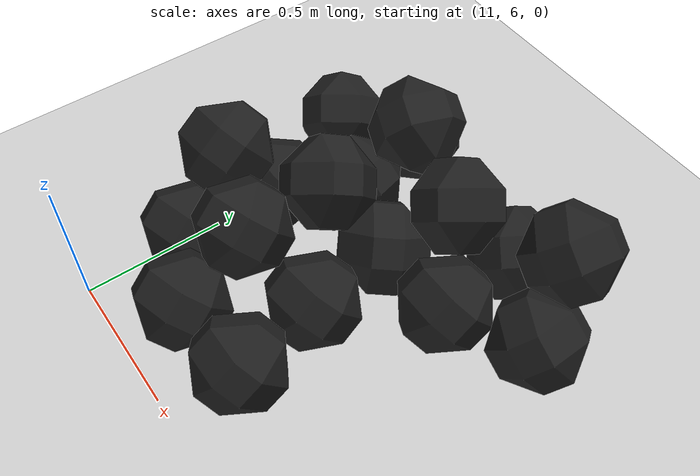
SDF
<sdf version="1.7">
 <world name="default">
  <model name="ground_plane">
   <static>1</static>
   <link name="link">
    <collision name="collision">
     <geometry><plane><normal>0 0 1</normal><size>100 100</size></plane></geometry>
     <surface><friction><ode><mu>100</mu><mu2>50</mu2></ode></friction></surface>
    </collision>
    <visual name="visual">
     <cast_shadows>0</cast_shadows>
     <geometry><plane><normal>0 0 1</normal><size>100 100</size></plane></geometry>
     <material>
      <script><uri>file://media/materials/scripts/gazebo.material</uri><name>Gazebo/Grey</name></script>
     </material>
    </visual>
   </link>
  </model>
  <model name="haoduomiantiaa_4">
   <link name="link_0">
    <inertial>
     <mass>0.2</mass>
     <inertia>
      <ixx>0.166667</ixx>
      <ixy>0</ixy>
      <ixz>0</ixz>
      <iyy>0.166667</iyy>
      <iyz>0</iyz>
      <izz>0.166667</izz>
     </inertia>
    </inertial>
    <visual name="visual">
     <geometry>
      <mesh>
       <uri>/home/lihaoyang/catkin_ws/src/pudong_gazebo/world/stl/haoduomianti.stl</uri>
       <scale>1 1 1</scale>
      </mesh>
     </geometry>
     <material>
      <lighting>1</lighting>
      <script><uri>file://media/materials/scripts/gazebo.material</uri><name>Gazebo/Black</name></script>
      <shader type="pixel"><normal_map>__default__</normal_map></shader>
      <ambient>0.3 0.3 0.3 1</ambient>
      <diffuse>0.7 0.7 0.7 1</diffuse>
      <specular>0.01 0.01 0.01 1</specular>
      <emissive>0 0 0 1</emissive>
     </material>
    </visual>
    <collision name="collision">
     <geometry>
      <mesh>
       <uri>/home/lihaoyang/catkin_ws/src/pudong_gazebo/world/stl/haoduomianti.stl</uri>
       <scale>1 1 1</scale>
      </mesh>
     </geometry>
     <surface>
      <friction>
       <ode><mu>1</mu><mu2>1</mu2><fdir1>0 0 0</fdir1><slip1>0</slip1><slip2>0</slip2></ode>
       <torsional>
        <coefficient>1</coefficient>
        <patch_radius>0</patch_radius>
        <surface_radius>0</surface_radius>
        <use_patch_radius>1</use_patch_radius>
        <ode><slip>0</slip></ode>
       </torsional>
      </friction>
      <bounce><restitution_coefficient>0</restitution_coefficient><threshold>1e+06</threshold></bounce>
      <contact>
       <collide_without_contact>0</collide_without_contact>
       <collide_without_contact_bitmask>1</collide_without_contact_bitmask>
       <collide_bitmask>1</collide_bitmask>
       <ode>
        <soft_cfm>0</soft_cfm>
        <soft_erp>0.2</soft_erp>
        <kp>1e+13</kp>
        <kd>1</kd>
        <max_vel>0.01</max_vel>
        <min_depth>0</min_depth>
       </ode>
       <bullet>
        <split_impulse>1</split_impulse>
        <split_impulse_penetration_threshold>-0.01</split_impulse_penetration_threshold>
        <soft_cfm>0</soft_cfm>
        <soft_erp>0.2</soft_erp>
        <kp>1e+13</kp>
        <kd>1</kd>
       </bullet>
      </contact>
     </surface>
    </collision>
   </link>
   <static>0</static>
   <pose>11.7712 7.19134 -0.115666 0.785393 -0.615464 0.502665</pose>
  </model>
  <model name="haoduomiantiaa_5">
   <link name="link_0">
    <inertial>
     <mass>0.2</mass>
     <inertia>
      <ixx>0.166667</ixx>
      <ixy>0</ixy>
      <ixz>0</ixz>
      <iyy>0.166667</iyy>
      <iyz>0</iyz>
      <izz>0.166667</izz>
     </inertia>
    </inertial>
    <visual name="visual">
     <geometry>
      <mesh>
       <uri>/home/lihaoyang/catkin_ws/src/pudong_gazebo/world/stl/haoduomianti.stl</uri>
       <scale>1 1 1</scale>
      </mesh>
     </geometry>
     <material>
      <lighting>1</lighting>
      <script><uri>file://media/materials/scripts/gazebo.material</uri><name>Gazebo/Black</name></script>
      <shader type="pixel"><normal_map>__default__</normal_map></shader>
      <ambient>0.3 0.3 0.3 1</ambient>
      <diffuse>0.7 0.7 0.7 1</diffuse>
      <specular>0.01 0.01 0.01 1</specular>
      <emissive>0 0 0 1</emissive>
     </material>
    </visual>
    <collision name="collision">
     <geometry>
      <mesh>
       <uri>/home/lihaoyang/catkin_ws/src/pudong_gazebo/world/stl/haoduomianti.stl</uri>
       <scale>1 1 1</scale>
      </mesh>
     </geometry>
     <surface>
      <friction>
       <ode><mu>1</mu><mu2>1</mu2><fdir1>0 0 0</fdir1><slip1>0</slip1><slip2>0</slip2></ode>
       <torsional>
        <coefficient>1</coefficient>
        <patch_radius>0</patch_radius>
        <surface_radius>0</surface_radius>
        <use_patch_radius>1</use_patch_radius>
        <ode><slip>0</slip></ode>
       </torsional>
      </friction>
      <bounce><restitution_coefficient>0</restitution_coefficient><threshold>1e+06</threshold></bounce>
      <contact>
       <collide_without_contact>0</collide_without_contact>
       <collide_without_contact_bitmask>1</collide_without_contact_bitmask>
       <collide_bitmask>1</collide_bitmask>
       <ode>
        <soft_cfm>0</soft_cfm>
        <soft_erp>0.2</soft_erp>
        <kp>1e+13</kp>
        <kd>1</kd>
        <max_vel>0.01</max_vel>
        <min_depth>0</min_depth>
       </ode>
       <bullet>
        <split_impulse>1</split_impulse>
        <split_impulse_penetration_threshold>-0.01</split_impulse_penetration_threshold>
        <soft_cfm>0</soft_cfm>
        <soft_erp>0.2</soft_erp>
        <kp>1e+13</kp>
        <kd>1</kd>
       </bullet>
      </contact>
     </surface>
    </collision>
   </link>
   <static>0</static>
   <pose>11.7983 6.88109 -0.115471 0.785183 -0.61558 -2.61596</pose>
  </model>
  <model name="haoduomiantiaa_10">
   <link name="link_0">
    <inertial>
     <mass>0.2</mass>
     <inertia>
      <ixx>0.166667</ixx>
      <ixy>0</ixy>
      <ixz>0</ixz>
      <iyy>0.166667</iyy>
      <iyz>0</iyz>
      <izz>0.166667</izz>
     </inertia>
    </inertial>
    <visual name="visual">
     <geometry>
      <mesh>
       <uri>/home/lihaoyang/catkin_ws/src/pudong_gazebo/world/stl/haoduomianti.stl</uri>
       <scale>1 1 1</scale>
      </mesh>
     </geometry>
     <material>
      <lighting>1</lighting>
      <script><uri>file://media/materials/scripts/gazebo.material</uri><name>Gazebo/Black</name></script>
      <shader type="pixel"><normal_map>__default__</normal_map></shader>
      <ambient>0.3 0.3 0.3 1</ambient>
      <diffuse>0.7 0.7 0.7 1</diffuse>
      <specular>0.01 0.01 0.01 1</specular>
      <emissive>0 0 0 1</emissive>
     </material>
    </visual>
    <collision name="collision">
     <geometry>
      <mesh>
       <uri>/home/lihaoyang/catkin_ws/src/pudong_gazebo/world/stl/haoduomianti.stl</uri>
       <scale>1 1 1</scale>
      </mesh>
     </geometry>
     <surface>
      <friction>
       <ode><mu>1</mu><mu2>1</mu2><fdir1>0 0 0</fdir1><slip1>0</slip1><slip2>0</slip2></ode>
       <torsional>
        <coefficient>1</coefficient>
        <patch_radius>0</patch_radius>
        <surface_radius>0</surface_radius>
        <use_patch_radius>1</use_patch_radius>
        <ode><slip>0</slip></ode>
       </torsional>
      </friction>
      <bounce><restitution_coefficient>0</restitution_coefficient><threshold>1e+06</threshold></bounce>
      <contact>
       <collide_without_contact>0</collide_without_contact>
       <collide_without_contact_bitmask>1</collide_without_contact_bitmask>
       <collide_bitmask>1</collide_bitmask>
       <ode>
        <soft_cfm>0</soft_cfm>
        <soft_erp>0.2</soft_erp>
        <kp>1e+13</kp>
        <kd>1</kd>
        <max_vel>0.01</max_vel>
        <min_depth>0</min_depth>
       </ode>
       <bullet>
        <split_impulse>1</split_impulse>
        <split_impulse_penetration_threshold>-0.01</split_impulse_penetration_threshold>
        <soft_cfm>0</soft_cfm>
        <soft_erp>0.2</soft_erp>
        <kp>1e+13</kp>
        <kd>1</kd>
       </bullet>
      </contact>
     </surface>
    </collision>
   </link>
   <static>0</static>
   <pose>11.5827 6.9581 -0.080952 1.42056 -0.779728 -0.513314</pose>
  </model>
  <model name="haoduomiantiaa_14">
   <link name="link_0">
    <inertial>
     <mass>0.2</mass>
     <inertia>
      <ixx>0.166667</ixx>
      <ixy>0</ixy>
      <ixz>0</ixz>
      <iyy>0.166667</iyy>
      <iyz>0</iyz>
      <izz>0.166667</izz>
     </inertia>
    </inertial>
    <visual name="visual">
     <geometry>
      <mesh>
       <uri>/home/lihaoyang/catkin_ws/src/pudong_gazebo/world/stl/haoduomianti.stl</uri>
       <scale>1 1 1</scale>
      </mesh>
     </geometry>
     <material>
      <lighting>1</lighting>
      <script><uri>file://media/materials/scripts/gazebo.material</uri><name>Gazebo/Black</name></script>
      <shader type="pixel"><normal_map>__default__</normal_map></shader>
      <ambient>0.3 0.3 0.3 1</ambient>
      <diffuse>0.7 0.7 0.7 1</diffuse>
      <specular>0.01 0.01 0.01 1</specular>
      <emissive>0 0 0 1</emissive>
     </material>
    </visual>
    <collision name="collision">
     <geometry>
      <mesh>
       <uri>/home/lihaoyang/catkin_ws/src/pudong_gazebo/world/stl/haoduomianti.stl</uri>
       <scale>1 1 1</scale>
      </mesh>
     </geometry>
     <surface>
      <friction>
       <ode><mu>1</mu><mu2>1</mu2><fdir1>0 0 0</fdir1><slip1>0</slip1><slip2>0</slip2></ode>
       <torsional>
        <coefficient>1</coefficient>
        <patch_radius>0</patch_radius>
        <surface_radius>0</surface_radius>
        <use_patch_radius>1</use_patch_radius>
        <ode><slip>0</slip></ode>
       </torsional>
      </friction>
      <bounce><restitution_coefficient>0</restitution_coefficient><threshold>1e+06</threshold></bounce>
      <contact>
       <collide_without_contact>0</collide_without_contact>
       <collide_without_contact_bitmask>1</collide_without_contact_bitmask>
       <collide_bitmask>1</collide_bitmask>
       <ode>
        <soft_cfm>0</soft_cfm>
        <soft_erp>0.2</soft_erp>
        <kp>1e+13</kp>
        <kd>1</kd>
        <max_vel>0.01</max_vel>
        <min_depth>0</min_depth>
       </ode>
       <bullet>
        <split_impulse>1</split_impulse>
        <split_impulse_penetration_threshold>-0.01</split_impulse_penetration_threshold>
        <soft_cfm>0</soft_cfm>
        <soft_erp>0.2</soft_erp>
        <kp>1e+13</kp>
        <kd>1</kd>
       </bullet>
      </contact>
     </surface>
    </collision>
   </link>
   <static>0</static>
   <pose>11.5498 6.54871 -0.115476 0.78541 -0.615461 -0.401961</pose>
  </model>
  <model name="haoduomiantiaa_26">
   <link name="link_0">
    <inertial>
     <mass>0.2</mass>
     <inertia>
      <ixx>0.166667</ixx>
      <ixy>0</ixy>
      <ixz>0</ixz>
      <iyy>0.166667</iyy>
      <iyz>0</iyz>
      <izz>0.166667</izz>
     </inertia>
    </inertial>
    <visual name="visual">
     <geometry>
      <mesh>
       <uri>/home/lihaoyang/catkin_ws/src/pudong_gazebo/world/stl/haoduomianti.stl</uri>
       <scale>1 1 1</scale>
      </mesh>
     </geometry>
     <material>
      <lighting>1</lighting>
      <script><uri>file://media/materials/scripts/gazebo.material</uri><name>Gazebo/Black</name></script>
      <shader type="pixel"><normal_map>__default__</normal_map></shader>
      <ambient>0.3 0.3 0.3 1</ambient>
      <diffuse>0.7 0.7 0.7 1</diffuse>
      <specular>0.01 0.01 0.01 1</specular>
      <emissive>0 0 0 1</emissive>
     </material>
    </visual>
    <collision name="collision">
     <geometry>
      <mesh>
       <uri>/home/lihaoyang/catkin_ws/src/pudong_gazebo/world/stl/haoduomianti.stl</uri>
       <scale>1 1 1</scale>
      </mesh>
     </geometry>
     <surface>
      <friction>
       <ode><mu>1</mu><mu2>1</mu2><fdir1>0 0 0</fdir1><slip1>0</slip1><slip2>0</slip2></ode>
       <torsional>
        <coefficient>1</coefficient>
        <patch_radius>0</patch_radius>
        <surface_radius>0</surface_radius>
        <use_patch_radius>1</use_patch_radius>
        <ode><slip>0</slip></ode>
       </torsional>
      </friction>
      <bounce><restitution_coefficient>0</restitution_coefficient><threshold>1e+06</threshold></bounce>
      <contact>
       <collide_without_contact>0</collide_without_contact>
       <collide_without_contact_bitmask>1</collide_without_contact_bitmask>
       <collide_bitmask>1</collide_bitmask>
       <ode>
        <soft_cfm>0</soft_cfm>
        <soft_erp>0.2</soft_erp>
        <kp>1e+13</kp>
        <kd>1</kd>
        <max_vel>0.01</max_vel>
        <min_depth>0</min_depth>
       </ode>
       <bullet>
        <split_impulse>1</split_impulse>
        <split_impulse_penetration_threshold>-0.01</split_impulse_penetration_threshold>
        <soft_cfm>0</soft_cfm>
        <soft_erp>0.2</soft_erp>
        <kp>1e+13</kp>
        <kd>1</kd>
       </bullet>
      </contact>
     </surface>
    </collision>
   </link>
   <static>0</static>
   <pose>11.3089 6.21374 -0.115494 0.785426 -0.61553 1.85959</pose>
  </model>
  <model name="haoduomiantiaa_30">
   <link name="link_0">
    <inertial>
     <mass>0.2</mass>
     <inertia>
      <ixx>0.166667</ixx>
      <ixy>0</ixy>
      <ixz>0</ixz>
      <iyy>0.166667</iyy>
      <iyz>0</iyz>
      <izz>0.166667</izz>
     </inertia>
    </inertial>
    <visual name="visual">
     <geometry>
      <mesh>
       <uri>/home/lihaoyang/catkin_ws/src/pudong_gazebo/world/stl/haoduomianti.stl</uri>
       <scale>1 1 1</scale>
      </mesh>
     </geometry>
     <material>
      <lighting>1</lighting>
      <script><uri>file://media/materials/scripts/gazebo.material</uri><name>Gazebo/Black</name></script>
      <shader type="pixel"><normal_map>__default__</normal_map></shader>
      <ambient>0.3 0.3 0.3 1</ambient>
      <diffuse>0.7 0.7 0.7 1</diffuse>
      <specular>0.01 0.01 0.01 1</specular>
      <emissive>0 0 0 1</emissive>
     </material>
    </visual>
    <collision name="collision">
     <geometry>
      <mesh>
       <uri>/home/lihaoyang/catkin_ws/src/pudong_gazebo/world/stl/haoduomianti.stl</uri>
       <scale>1 1 1</scale>
      </mesh>
     </geometry>
     <surface>
      <friction>
       <ode><mu>1</mu><mu2>1</mu2><fdir1>0 0 0</fdir1><slip1>0</slip1><slip2>0</slip2></ode>
       <torsional>
        <coefficient>1</coefficient>
        <patch_radius>0</patch_radius>
        <surface_radius>0</surface_radius>
        <use_patch_radius>1</use_patch_radius>
        <ode><slip>0</slip></ode>
       </torsional>
      </friction>
      <bounce><restitution_coefficient>0</restitution_coefficient><threshold>1e+06</threshold></bounce>
      <contact>
       <collide_without_contact>0</collide_without_contact>
       <collide_without_contact_bitmask>1</collide_without_contact_bitmask>
       <collide_bitmask>1</collide_bitmask>
       <ode>
        <soft_cfm>0</soft_cfm>
        <soft_erp>0.2</soft_erp>
        <kp>1e+13</kp>
        <kd>1</kd>
        <max_vel>0.01</max_vel>
        <min_depth>0</min_depth>
       </ode>
       <bullet>
        <split_impulse>1</split_impulse>
        <split_impulse_penetration_threshold>-0.01</split_impulse_penetration_threshold>
        <soft_cfm>0</soft_cfm>
        <soft_erp>0.2</soft_erp>
        <kp>1e+13</kp>
        <kd>1</kd>
       </bullet>
      </contact>
     </surface>
    </collision>
   </link>
   <static>0</static>
   <pose>11.1733 7.26258 -0.115473 0.785215 -0.615662 -1.66822</pose>
  </model>
  <model name="haoduomiantiaa_46">
   <link name="link_0">
    <inertial>
     <mass>0.2</mass>
     <inertia>
      <ixx>0.166667</ixx>
      <ixy>0</ixy>
      <ixz>0</ixz>
      <iyy>0.166667</iyy>
      <iyz>0</iyz>
      <izz>0.166667</izz>
     </inertia>
    </inertial>
    <visual name="visual">
     <geometry>
      <mesh>
       <uri>/home/lihaoyang/catkin_ws/src/pudong_gazebo/world/stl/haoduomianti.stl</uri>
       <scale>1 1 1</scale>
      </mesh>
     </geometry>
     <material>
      <lighting>1</lighting>
      <script><uri>file://media/materials/scripts/gazebo.material</uri><name>Gazebo/Black</name></script>
      <shader type="pixel"><normal_map>__default__</normal_map></shader>
      <ambient>0.3 0.3 0.3 1</ambient>
      <diffuse>0.7 0.7 0.7 1</diffuse>
      <specular>0.01 0.01 0.01 1</specular>
      <emissive>0 0 0 1</emissive>
     </material>
    </visual>
    <collision name="collision">
     <geometry>
      <mesh>
       <uri>/home/lihaoyang/catkin_ws/src/pudong_gazebo/world/stl/haoduomianti.stl</uri>
       <scale>1 1 1</scale>
      </mesh>
     </geometry>
     <surface>
      <friction>
       <ode><mu>1</mu><mu2>1</mu2><fdir1>0 0 0</fdir1><slip1>0</slip1><slip2>0</slip2></ode>
       <torsional>
        <coefficient>1</coefficient>
        <patch_radius>0</patch_radius>
        <surface_radius>0</surface_radius>
        <use_patch_radius>1</use_patch_radius>
        <ode><slip>0</slip></ode>
       </torsional>
      </friction>
      <bounce><restitution_coefficient>0</restitution_coefficient><threshold>1e+06</threshold></bounce>
      <contact>
       <collide_without_contact>0</collide_without_contact>
       <collide_without_contact_bitmask>1</collide_without_contact_bitmask>
       <collide_bitmask>1</collide_bitmask>
       <ode>
        <soft_cfm>0</soft_cfm>
        <soft_erp>0.2</soft_erp>
        <kp>1e+13</kp>
        <kd>1</kd>
        <max_vel>0.01</max_vel>
        <min_depth>0</min_depth>
       </ode>
       <bullet>
        <split_impulse>1</split_impulse>
        <split_impulse_penetration_threshold>-0.01</split_impulse_penetration_threshold>
        <soft_cfm>0</soft_cfm>
        <soft_erp>0.2</soft_erp>
        <kp>1e+13</kp>
        <kd>1</kd>
       </bullet>
      </contact>
     </surface>
    </collision>
   </link>
   <static>0</static>
   <pose>11.065 6.36783 -0.115479 0.785401 -0.615476 -0.237314</pose>
  </model>
  <model name="haoduomiantiaa_51">
   <link name="link_0">
    <inertial>
     <mass>0.2</mass>
     <inertia>
      <ixx>0.166667</ixx>
      <ixy>0</ixy>
      <ixz>0</ixz>
      <iyy>0.166667</iyy>
      <iyz>0</iyz>
      <izz>0.166667</izz>
     </inertia>
    </inertial>
    <visual name="visual">
     <geometry>
      <mesh>
       <uri>/home/lihaoyang/catkin_ws/src/pudong_gazebo/world/stl/haoduomianti.stl</uri>
       <scale>1 1 1</scale>
      </mesh>
     </geometry>
     <material>
      <lighting>1</lighting>
      <script><uri>file://media/materials/scripts/gazebo.material</uri><name>Gazebo/Black</name></script>
      <shader type="pixel"><normal_map>__default__</normal_map></shader>
      <ambient>0.3 0.3 0.3 1</ambient>
      <diffuse>0.7 0.7 0.7 1</diffuse>
      <specular>0.01 0.01 0.01 1</specular>
      <emissive>0 0 0 1</emissive>
     </material>
    </visual>
    <collision name="collision">
     <geometry>
      <mesh>
       <uri>/home/lihaoyang/catkin_ws/src/pudong_gazebo/world/stl/haoduomianti.stl</uri>
       <scale>1 1 1</scale>
      </mesh>
     </geometry>
     <surface>
      <friction>
       <ode><mu>1</mu><mu2>1</mu2><fdir1>0 0 0</fdir1><slip1>0</slip1><slip2>0</slip2></ode>
       <torsional>
        <coefficient>1</coefficient>
        <patch_radius>0</patch_radius>
        <surface_radius>0</surface_radius>
        <use_patch_radius>1</use_patch_radius>
        <ode><slip>0</slip></ode>
       </torsional>
      </friction>
      <bounce><restitution_coefficient>0</restitution_coefficient><threshold>1e+06</threshold></bounce>
      <contact>
       <collide_without_contact>0</collide_without_contact>
       <collide_without_contact_bitmask>1</collide_without_contact_bitmask>
       <collide_bitmask>1</collide_bitmask>
       <ode>
        <soft_cfm>0</soft_cfm>
        <soft_erp>0.2</soft_erp>
        <kp>1e+13</kp>
        <kd>1</kd>
        <max_vel>0.01</max_vel>
        <min_depth>0</min_depth>
       </ode>
       <bullet>
        <split_impulse>1</split_impulse>
        <split_impulse_penetration_threshold>-0.01</split_impulse_penetration_threshold>
        <soft_cfm>0</soft_cfm>
        <soft_erp>0.2</soft_erp>
        <kp>1e+13</kp>
        <kd>1</kd>
       </bullet>
      </contact>
     </surface>
    </collision>
   </link>
   <static>0</static>
   <pose>12.0644 7.0301 -0.115545 0.785457 -0.615498 1.07147</pose>
  </model>
  <model name="haoduomiantiaa_54">
   <link name="link_0">
    <inertial>
     <mass>0.2</mass>
     <inertia>
      <ixx>0.166667</ixx>
      <ixy>0</ixy>
      <ixz>0</ixz>
      <iyy>0.166667</iyy>
      <iyz>0</iyz>
      <izz>0.166667</izz>
     </inertia>
    </inertial>
    <visual name="visual">
     <geometry>
      <mesh>
       <uri>/home/lihaoyang/catkin_ws/src/pudong_gazebo/world/stl/haoduomianti.stl</uri>
       <scale>1 1 1</scale>
      </mesh>
     </geometry>
     <material>
      <lighting>1</lighting>
      <script><uri>file://media/materials/scripts/gazebo.material</uri><name>Gazebo/Black</name></script>
      <shader type="pixel"><normal_map>__default__</normal_map></shader>
      <ambient>0.3 0.3 0.3 1</ambient>
      <diffuse>0.7 0.7 0.7 1</diffuse>
      <specular>0.01 0.01 0.01 1</specular>
      <emissive>0 0 0 1</emissive>
     </material>
    </visual>
    <collision name="collision">
     <geometry>
      <mesh>
       <uri>/home/lihaoyang/catkin_ws/src/pudong_gazebo/world/stl/haoduomianti.stl</uri>
       <scale>1 1 1</scale>
      </mesh>
     </geometry>
     <surface>
      <friction>
       <ode><mu>1</mu><mu2>1</mu2><fdir1>0 0 0</fdir1><slip1>0</slip1><slip2>0</slip2></ode>
       <torsional>
        <coefficient>1</coefficient>
        <patch_radius>0</patch_radius>
        <surface_radius>0</surface_radius>
        <use_patch_radius>1</use_patch_radius>
        <ode><slip>0</slip></ode>
       </torsional>
      </friction>
      <bounce><restitution_coefficient>0</restitution_coefficient><threshold>1e+06</threshold></bounce>
      <contact>
       <collide_without_contact>0</collide_without_contact>
       <collide_without_contact_bitmask>1</collide_without_contact_bitmask>
       <collide_bitmask>1</collide_bitmask>
       <ode>
        <soft_cfm>0</soft_cfm>
        <soft_erp>0.2</soft_erp>
        <kp>1e+13</kp>
        <kd>1</kd>
        <max_vel>0.01</max_vel>
        <min_depth>0</min_depth>
       </ode>
       <bullet>
        <split_impulse>1</split_impulse>
        <split_impulse_penetration_threshold>-0.01</split_impulse_penetration_threshold>
        <soft_cfm>0</soft_cfm>
        <soft_erp>0.2</soft_erp>
        <kp>1e+13</kp>
        <kd>1</kd>
       </bullet>
      </contact>
     </surface>
    </collision>
   </link>
   <static>0</static>
   <pose>11.1817 7.10432 -0.07151 1.55959 -0.785365 0.261435</pose>
  </model>
  <model name="haoduomiantiaa_59">
   <link name="link_0">
    <inertial>
     <mass>0.2</mass>
     <inertia>
      <ixx>0.166667</ixx>
      <ixy>0</ixy>
      <ixz>0</ixz>
      <iyy>0.166667</iyy>
      <iyz>0</iyz>
      <izz>0.166667</izz>
     </inertia>
    </inertial>
    <visual name="visual">
     <geometry>
      <mesh>
       <uri>/home/lihaoyang/catkin_ws/src/pudong_gazebo/world/stl/haoduomianti.stl</uri>
       <scale>1 1 1</scale>
      </mesh>
     </geometry>
     <material>
      <lighting>1</lighting>
      <script><uri>file://media/materials/scripts/gazebo.material</uri><name>Gazebo/Black</name></script>
      <shader type="pixel"><normal_map>__default__</normal_map></shader>
      <ambient>0.3 0.3 0.3 1</ambient>
      <diffuse>0.7 0.7 0.7 1</diffuse>
      <specular>0.01 0.01 0.01 1</specular>
      <emissive>0 0 0 1</emissive>
     </material>
    </visual>
    <collision name="collision">
     <geometry>
      <mesh>
       <uri>/home/lihaoyang/catkin_ws/src/pudong_gazebo/world/stl/haoduomianti.stl</uri>
       <scale>1 1 1</scale>
      </mesh>
     </geometry>
     <surface>
      <friction>
       <ode><mu>1</mu><mu2>1</mu2><fdir1>0 0 0</fdir1><slip1>0</slip1><slip2>0</slip2></ode>
       <torsional>
        <coefficient>1</coefficient>
        <patch_radius>0</patch_radius>
        <surface_radius>0</surface_radius>
        <use_patch_radius>1</use_patch_radius>
        <ode><slip>0</slip></ode>
       </torsional>
      </friction>
      <bounce><restitution_coefficient>0</restitution_coefficient><threshold>1e+06</threshold></bounce>
      <contact>
       <collide_without_contact>0</collide_without_contact>
       <collide_without_contact_bitmask>1</collide_without_contact_bitmask>
       <collide_bitmask>1</collide_bitmask>
       <ode>
        <soft_cfm>0</soft_cfm>
        <soft_erp>0.2</soft_erp>
        <kp>1e+13</kp>
        <kd>1</kd>
        <max_vel>0.01</max_vel>
        <min_depth>0</min_depth>
       </ode>
       <bullet>
        <split_impulse>1</split_impulse>
        <split_impulse_penetration_threshold>-0.01</split_impulse_penetration_threshold>
        <soft_cfm>0</soft_cfm>
        <soft_erp>0.2</soft_erp>
        <kp>1e+13</kp>
        <kd>1</kd>
       </bullet>
      </contact>
     </surface>
    </collision>
   </link>
   <static>0</static>
   <pose>11.2893 6.45656 0.067062 0.756049 -0.571511 -0.18228</pose>
  </model>
  <model name="haoduomiantiaa_83">
   <link name="link_0">
    <inertial>
     <mass>0.2</mass>
     <inertia>
      <ixx>0.166667</ixx>
      <ixy>0</ixy>
      <ixz>0</ixz>
      <iyy>0.166667</iyy>
      <iyz>0</iyz>
      <izz>0.166667</izz>
     </inertia>
    </inertial>
    <visual name="visual">
     <geometry>
      <mesh>
       <uri>/home/lihaoyang/catkin_ws/src/pudong_gazebo/world/stl/haoduomianti.stl</uri>
       <scale>1 1 1</scale>
      </mesh>
     </geometry>
     <material>
      <lighting>1</lighting>
      <script><uri>file://media/materials/scripts/gazebo.material</uri><name>Gazebo/Black</name></script>
      <shader type="pixel"><normal_map>__default__</normal_map></shader>
      <ambient>0.3 0.3 0.3 1</ambient>
      <diffuse>0.7 0.7 0.7 1</diffuse>
      <specular>0.01 0.01 0.01 1</specular>
      <emissive>0 0 0 1</emissive>
     </material>
    </visual>
    <collision name="collision">
     <geometry>
      <mesh>
       <uri>/home/lihaoyang/catkin_ws/src/pudong_gazebo/world/stl/haoduomianti.stl</uri>
       <scale>1 1 1</scale>
      </mesh>
     </geometry>
     <surface>
      <friction>
       <ode><mu>1</mu><mu2>1</mu2><fdir1>0 0 0</fdir1><slip1>0</slip1><slip2>0</slip2></ode>
       <torsional>
        <coefficient>1</coefficient>
        <patch_radius>0</patch_radius>
        <surface_radius>0</surface_radius>
        <use_patch_radius>1</use_patch_radius>
        <ode><slip>0</slip></ode>
       </torsional>
      </friction>
      <bounce><restitution_coefficient>0</restitution_coefficient><threshold>1e+06</threshold></bounce>
      <contact>
       <collide_without_contact>0</collide_without_contact>
       <collide_without_contact_bitmask>1</collide_without_contact_bitmask>
       <collide_bitmask>1</collide_bitmask>
       <ode>
        <soft_cfm>0</soft_cfm>
        <soft_erp>0.2</soft_erp>
        <kp>1e+13</kp>
        <kd>1</kd>
        <max_vel>0.01</max_vel>
        <min_depth>0</min_depth>
       </ode>
       <bullet>
        <split_impulse>1</split_impulse>
        <split_impulse_penetration_threshold>-0.01</split_impulse_penetration_threshold>
        <soft_cfm>0</soft_cfm>
        <soft_erp>0.2</soft_erp>
        <kp>1e+13</kp>
        <kd>1</kd>
       </bullet>
      </contact>
     </surface>
    </collision>
   </link>
   <static>0</static>
   <pose>11.6258 7.05159 0.094761 0.761494 -0.664514 2.53744</pose>
  </model>
  <model name="haoduomiantiaa_90">
   <link name="link_0">
    <inertial>
     <mass>0.2</mass>
     <inertia>
      <ixx>0.166667</ixx>
      <ixy>0</ixy>
      <ixz>0</ixz>
      <iyy>0.166667</iyy>
      <iyz>0</iyz>
      <izz>0.166667</izz>
     </inertia>
    </inertial>
    <visual name="visual">
     <geometry>
      <mesh>
       <uri>/home/lihaoyang/catkin_ws/src/pudong_gazebo/world/stl/haoduomianti.stl</uri>
       <scale>1 1 1</scale>
      </mesh>
     </geometry>
     <material>
      <lighting>1</lighting>
      <script><uri>file://media/materials/scripts/gazebo.material</uri><name>Gazebo/Black</name></script>
      <shader type="pixel"><normal_map>__default__</normal_map></shader>
      <ambient>0.3 0.3 0.3 1</ambient>
      <diffuse>0.7 0.7 0.7 1</diffuse>
      <specular>0.01 0.01 0.01 1</specular>
      <emissive>0 0 0 1</emissive>
     </material>
    </visual>
    <collision name="collision">
     <geometry>
      <mesh>
       <uri>/home/lihaoyang/catkin_ws/src/pudong_gazebo/world/stl/haoduomianti.stl</uri>
       <scale>1 1 1</scale>
      </mesh>
     </geometry>
     <surface>
      <friction>
       <ode><mu>1</mu><mu2>1</mu2><fdir1>0 0 0</fdir1><slip1>0</slip1><slip2>0</slip2></ode>
       <torsional>
        <coefficient>1</coefficient>
        <patch_radius>0</patch_radius>
        <surface_radius>0</surface_radius>
        <use_patch_radius>1</use_patch_radius>
        <ode><slip>0</slip></ode>
       </torsional>
      </friction>
      <bounce><restitution_coefficient>0</restitution_coefficient><threshold>1e+06</threshold></bounce>
      <contact>
       <collide_without_contact>0</collide_without_contact>
       <collide_without_contact_bitmask>1</collide_without_contact_bitmask>
       <collide_bitmask>1</collide_bitmask>
       <ode>
        <soft_cfm>0</soft_cfm>
        <soft_erp>0.2</soft_erp>
        <kp>1e+13</kp>
        <kd>1</kd>
        <max_vel>0.01</max_vel>
        <min_depth>0</min_depth>
       </ode>
       <bullet>
        <split_impulse>1</split_impulse>
        <split_impulse_penetration_threshold>-0.01</split_impulse_penetration_threshold>
        <soft_cfm>0</soft_cfm>
        <soft_erp>0.2</soft_erp>
        <kp>1e+13</kp>
        <kd>1</kd>
       </bullet>
      </contact>
     </surface>
    </collision>
   </link>
   <static>0</static>
   <pose>11.609 6.24458 -0.11548 0.785398 -0.615477 -0.52022</pose>
  </model>
  <model name="haoduomiantiaa_100">
   <link name="link_0">
    <inertial>
     <mass>0.2</mass>
     <inertia>
      <ixx>0.166667</ixx>
      <ixy>0</ixy>
      <ixz>0</ixz>
      <iyy>0.166667</iyy>
      <iyz>0</iyz>
      <izz>0.166667</izz>
     </inertia>
    </inertial>
    <visual name="visual">
     <geometry>
      <mesh>
       <uri>/home/lihaoyang/catkin_ws/src/pudong_gazebo/world/stl/haoduomianti.stl</uri>
       <scale>1 1 1</scale>
      </mesh>
     </geometry>
     <material>
      <lighting>1</lighting>
      <script><uri>file://media/materials/scripts/gazebo.material</uri><name>Gazebo/Black</name></script>
      <shader type="pixel"><normal_map>__default__</normal_map></shader>
      <ambient>0.3 0.3 0.3 1</ambient>
      <diffuse>0.7 0.7 0.7 1</diffuse>
      <specular>0.01 0.01 0.01 1</specular>
      <emissive>0 0 0 1</emissive>
     </material>
    </visual>
    <collision name="collision">
     <geometry>
      <mesh>
       <uri>/home/lihaoyang/catkin_ws/src/pudong_gazebo/world/stl/haoduomianti.stl</uri>
       <scale>1 1 1</scale>
      </mesh>
     </geometry>
     <surface>
      <friction>
       <ode><mu>1</mu><mu2>1</mu2><fdir1>0 0 0</fdir1><slip1>0</slip1><slip2>0</slip2></ode>
       <torsional>
        <coefficient>1</coefficient>
        <patch_radius>0</patch_radius>
        <surface_radius>0</surface_radius>
        <use_patch_radius>1</use_patch_radius>
        <ode><slip>0</slip></ode>
       </torsional>
      </friction>
      <bounce><restitution_coefficient>0</restitution_coefficient><threshold>1e+06</threshold></bounce>
      <contact>
       <collide_without_contact>0</collide_without_contact>
       <collide_without_contact_bitmask>1</collide_without_contact_bitmask>
       <collide_bitmask>1</collide_bitmask>
       <ode>
        <soft_cfm>0</soft_cfm>
        <soft_erp>0.2</soft_erp>
        <kp>1e+13</kp>
        <kd>1</kd>
        <max_vel>0.01</max_vel>
        <min_depth>0</min_depth>
       </ode>
       <bullet>
        <split_impulse>1</split_impulse>
        <split_impulse_penetration_threshold>-0.01</split_impulse_penetration_threshold>
        <soft_cfm>0</soft_cfm>
        <soft_erp>0.2</soft_erp>
        <kp>1e+13</kp>
        <kd>1</kd>
       </bullet>
      </contact>
     </surface>
    </collision>
   </link>
   <static>0</static>
   <pose>11.3555 6.81939 0.090891 0.892511 -0.384926 -1.91363</pose>
  </model>
  <model name="haoduomiantiaa_122">
   <link name="link_0">
    <inertial>
     <mass>0.2</mass>
     <inertia>
      <ixx>0.166667</ixx>
      <ixy>0</ixy>
      <ixz>0</ixz>
      <iyy>0.166667</iyy>
      <iyz>0</iyz>
      <izz>0.166667</izz>
     </inertia>
    </inertial>
    <visual name="visual">
     <geometry>
      <mesh>
       <uri>/home/lihaoyang/catkin_ws/src/pudong_gazebo/world/stl/haoduomianti.stl</uri>
       <scale>1 1 1</scale>
      </mesh>
     </geometry>
     <material>
      <lighting>1</lighting>
      <script><uri>file://media/materials/scripts/gazebo.material</uri><name>Gazebo/Black</name></script>
      <shader type="pixel"><normal_map>__default__</normal_map></shader>
      <ambient>0.3 0.3 0.3 1</ambient>
      <diffuse>0.7 0.7 0.7 1</diffuse>
      <specular>0.01 0.01 0.01 1</specular>
      <emissive>0 0 0 1</emissive>
     </material>
    </visual>
    <collision name="collision">
     <geometry>
      <mesh>
       <uri>/home/lihaoyang/catkin_ws/src/pudong_gazebo/world/stl/haoduomianti.stl</uri>
       <scale>1 1 1</scale>
      </mesh>
     </geometry>
     <surface>
      <friction>
       <ode><mu>1</mu><mu2>1</mu2><fdir1>0 0 0</fdir1><slip1>0</slip1><slip2>0</slip2></ode>
       <torsional>
        <coefficient>1</coefficient>
        <patch_radius>0</patch_radius>
        <surface_radius>0</surface_radius>
        <use_patch_radius>1</use_patch_radius>
        <ode><slip>0</slip></ode>
       </torsional>
      </friction>
      <bounce><restitution_coefficient>0</restitution_coefficient><threshold>1e+06</threshold></bounce>
      <contact>
       <collide_without_contact>0</collide_without_contact>
       <collide_without_contact_bitmask>1</collide_without_contact_bitmask>
       <collide_bitmask>1</collide_bitmask>
       <ode>
        <soft_cfm>0</soft_cfm>
        <soft_erp>0.2</soft_erp>
        <kp>1e+13</kp>
        <kd>1</kd>
        <max_vel>0.01</max_vel>
        <min_depth>0</min_depth>
       </ode>
       <bullet>
        <split_impulse>1</split_impulse>
        <split_impulse_penetration_threshold>-0.01</split_impulse_penetration_threshold>
        <soft_cfm>0</soft_cfm>
        <soft_erp>0.2</soft_erp>
        <kp>1e+13</kp>
        <kd>1</kd>
       </bullet>
      </contact>
     </surface>
    </collision>
   </link>
   <static>0</static>
   <pose>11.0658 6.56772 0.124807 0.604554 -0.596683 1.71207</pose>
  </model>
  <model name="haoduomiantiaa_148">
   <link name="link_0">
    <inertial>
     <mass>0.2</mass>
     <inertia>
      <ixx>0.166667</ixx>
      <ixy>0</ixy>
      <ixz>0</ixz>
      <iyy>0.166667</iyy>
      <iyz>0</iyz>
      <izz>0.166667</izz>
     </inertia>
    </inertial>
    <visual name="visual">
     <geometry>
      <mesh>
       <uri>/home/lihaoyang/catkin_ws/src/pudong_gazebo/world/stl/haoduomianti.stl</uri>
       <scale>1 1 1</scale>
      </mesh>
     </geometry>
     <material>
      <lighting>1</lighting>
      <script><uri>file://media/materials/scripts/gazebo.material</uri><name>Gazebo/Black</name></script>
      <shader type="pixel"><normal_map>__default__</normal_map></shader>
      <ambient>0.3 0.3 0.3 1</ambient>
      <diffuse>0.7 0.7 0.7 1</diffuse>
      <specular>0.01 0.01 0.01 1</specular>
      <emissive>0 0 0 1</emissive>
     </material>
    </visual>
    <collision name="collision">
     <geometry>
      <mesh>
       <uri>/home/lihaoyang/catkin_ws/src/pudong_gazebo/world/stl/haoduomianti.stl</uri>
       <scale>1 1 1</scale>
      </mesh>
     </geometry>
     <surface>
      <friction>
       <ode><mu>1</mu><mu2>1</mu2><fdir1>0 0 0</fdir1><slip1>0</slip1><slip2>0</slip2></ode>
       <torsional>
        <coefficient>1</coefficient>
        <patch_radius>0</patch_radius>
        <surface_radius>0</surface_radius>
        <use_patch_radius>1</use_patch_radius>
        <ode><slip>0</slip></ode>
       </torsional>
      </friction>
      <bounce><restitution_coefficient>0</restitution_coefficient><threshold>1e+06</threshold></bounce>
      <contact>
       <collide_without_contact>0</collide_without_contact>
       <collide_without_contact_bitmask>1</collide_without_contact_bitmask>
       <collide_bitmask>1</collide_bitmask>
       <ode>
        <soft_cfm>0</soft_cfm>
        <soft_erp>0.2</soft_erp>
        <kp>1e+13</kp>
        <kd>1</kd>
        <max_vel>0.01</max_vel>
        <min_depth>0</min_depth>
       </ode>
       <bullet>
        <split_impulse>1</split_impulse>
        <split_impulse_penetration_threshold>-0.01</split_impulse_penetration_threshold>
        <soft_cfm>0</soft_cfm>
        <soft_erp>0.2</soft_erp>
        <kp>1e+13</kp>
        <kd>1</kd>
       </bullet>
      </contact>
     </surface>
    </collision>
   </link>
   <static>0</static>
   <pose>11.9747 7.20141 0.10435 0.795496 -0.618726 0.884055</pose>
  </model>
  <model name="haoduomiantiaa_155">
   <link name="link_0">
    <inertial>
     <mass>0.2</mass>
     <inertia>
      <ixx>0.166667</ixx>
      <ixy>0</ixy>
      <ixz>0</ixz>
      <iyy>0.166667</iyy>
      <iyz>0</iyz>
      <izz>0.166667</izz>
     </inertia>
    </inertial>
    <visual name="visual">
     <geometry>
      <mesh>
       <uri>/home/lihaoyang/catkin_ws/src/pudong_gazebo/world/stl/haoduomianti.stl</uri>
       <scale>1 1 1</scale>
      </mesh>
     </geometry>
     <material>
      <lighting>1</lighting>
      <script><uri>file://media/materials/scripts/gazebo.material</uri><name>Gazebo/Black</name></script>
      <shader type="pixel"><normal_map>__default__</normal_map></shader>
      <ambient>0.3 0.3 0.3 1</ambient>
      <diffuse>0.7 0.7 0.7 1</diffuse>
      <specular>0.01 0.01 0.01 1</specular>
      <emissive>0 0 0 1</emissive>
     </material>
    </visual>
    <collision name="collision">
     <geometry>
      <mesh>
       <uri>/home/lihaoyang/catkin_ws/src/pudong_gazebo/world/stl/haoduomianti.stl</uri>
       <scale>1 1 1</scale>
      </mesh>
     </geometry>
     <surface>
      <friction>
       <ode><mu>1</mu><mu2>1</mu2><fdir1>0 0 0</fdir1><slip1>0</slip1><slip2>0</slip2></ode>
       <torsional>
        <coefficient>1</coefficient>
        <patch_radius>0</patch_radius>
        <surface_radius>0</surface_radius>
        <use_patch_radius>1</use_patch_radius>
        <ode><slip>0</slip></ode>
       </torsional>
      </friction>
      <bounce><restitution_coefficient>0</restitution_coefficient><threshold>1e+06</threshold></bounce>
      <contact>
       <collide_without_contact>0</collide_without_contact>
       <collide_without_contact_bitmask>1</collide_without_contact_bitmask>
       <collide_bitmask>1</collide_bitmask>
       <ode>
        <soft_cfm>0</soft_cfm>
        <soft_erp>0.2</soft_erp>
        <kp>1e+13</kp>
        <kd>1</kd>
        <max_vel>0.01</max_vel>
        <min_depth>0</min_depth>
       </ode>
       <bullet>
        <split_impulse>1</split_impulse>
        <split_impulse_penetration_threshold>-0.01</split_impulse_penetration_threshold>
        <soft_cfm>0</soft_cfm>
        <soft_erp>0.2</soft_erp>
        <kp>1e+13</kp>
        <kd>1</kd>
       </bullet>
      </contact>
     </surface>
    </collision>
   </link>
   <static>0</static>
   <pose>11.0585 6.72178 -0.115411 0.785533 -0.605076 -0.709596</pose>
  </model>
  <model name="haoduomiantiaa_158">
   <link name="link_0">
    <inertial>
     <mass>0.2</mass>
     <inertia>
      <ixx>0.166667</ixx>
      <ixy>0</ixy>
      <ixz>0</ixz>
      <iyy>0.166667</iyy>
      <iyz>0</iyz>
      <izz>0.166667</izz>
     </inertia>
    </inertial>
    <visual name="visual">
     <geometry>
      <mesh>
       <uri>/home/lihaoyang/catkin_ws/src/pudong_gazebo/world/stl/haoduomianti.stl</uri>
       <scale>1 1 1</scale>
      </mesh>
     </geometry>
     <material>
      <lighting>1</lighting>
      <script><uri>file://media/materials/scripts/gazebo.material</uri><name>Gazebo/Black</name></script>
      <shader type="pixel"><normal_map>__default__</normal_map></shader>
      <ambient>0.3 0.3 0.3 1</ambient>
      <diffuse>0.7 0.7 0.7 1</diffuse>
      <specular>0.01 0.01 0.01 1</specular>
      <emissive>0 0 0 1</emissive>
     </material>
    </visual>
    <collision name="collision">
     <geometry>
      <mesh>
       <uri>/home/lihaoyang/catkin_ws/src/pudong_gazebo/world/stl/haoduomianti.stl</uri>
       <scale>1 1 1</scale>
      </mesh>
     </geometry>
     <surface>
      <friction>
       <ode><mu>1</mu><mu2>1</mu2><fdir1>0 0 0</fdir1><slip1>0</slip1><slip2>0</slip2></ode>
       <torsional>
        <coefficient>1</coefficient>
        <patch_radius>0</patch_radius>
        <surface_radius>0</surface_radius>
        <use_patch_radius>1</use_patch_radius>
        <ode><slip>0</slip></ode>
       </torsional>
      </friction>
      <bounce><restitution_coefficient>0</restitution_coefficient><threshold>1e+06</threshold></bounce>
      <contact>
       <collide_without_contact>0</collide_without_contact>
       <collide_without_contact_bitmask>1</collide_without_contact_bitmask>
       <collide_bitmask>1</collide_bitmask>
       <ode>
        <soft_cfm>0</soft_cfm>
        <soft_erp>0.2</soft_erp>
        <kp>1e+13</kp>
        <kd>1</kd>
        <max_vel>0.01</max_vel>
        <min_depth>0</min_depth>
       </ode>
       <bullet>
        <split_impulse>1</split_impulse>
        <split_impulse_penetration_threshold>-0.01</split_impulse_penetration_threshold>
        <soft_cfm>0</soft_cfm>
        <soft_erp>0.2</soft_erp>
        <kp>1e+13</kp>
        <kd>1</kd>
       </bullet>
      </contact>
     </surface>
    </collision>
   </link>
   <static>0</static>
   <pose>11.3675 7.08965 0.145814 1.01987 -0.784384 -1.47083</pose>
  </model>
  <model name="haoduomiantiaa_197">
   <link name="link_0">
    <inertial>
     <mass>0.2</mass>
     <inertia>
      <ixx>0.166667</ixx>
      <ixy>0</ixy>
      <ixz>0</ixz>
      <iyy>0.166667</iyy>
      <iyz>0</iyz>
      <izz>0.166667</izz>
     </inertia>
    </inertial>
    <visual name="visual">
     <geometry>
      <mesh>
       <uri>/home/lihaoyang/catkin_ws/src/pudong_gazebo/world/stl/haoduomianti.stl</uri>
       <scale>1 1 1</scale>
      </mesh>
     </geometry>
     <material>
      <lighting>1</lighting>
      <script><uri>file://media/materials/scripts/gazebo.material</uri><name>Gazebo/Black</name></script>
      <shader type="pixel"><normal_map>__default__</normal_map></shader>
      <ambient>0.3 0.3 0.3 1</ambient>
      <diffuse>0.7 0.7 0.7 1</diffuse>
      <specular>0.01 0.01 0.01 1</specular>
      <emissive>0 0 0 1</emissive>
     </material>
    </visual>
    <collision name="collision">
     <geometry>
      <mesh>
       <uri>/home/lihaoyang/catkin_ws/src/pudong_gazebo/world/stl/haoduomianti.stl</uri>
       <scale>1 1 1</scale>
      </mesh>
     </geometry>
     <surface>
      <friction>
       <ode><mu>1</mu><mu2>1</mu2><fdir1>0 0 0</fdir1><slip1>0</slip1><slip2>0</slip2></ode>
       <torsional>
        <coefficient>1</coefficient>
        <patch_radius>0</patch_radius>
        <surface_radius>0</surface_radius>
        <use_patch_radius>1</use_patch_radius>
        <ode><slip>0</slip></ode>
       </torsional>
      </friction>
      <bounce><restitution_coefficient>0</restitution_coefficient><threshold>1e+06</threshold></bounce>
      <contact>
       <collide_without_contact>0</collide_without_contact>
       <collide_without_contact_bitmask>1</collide_without_contact_bitmask>
       <collide_bitmask>1</collide_bitmask>
       <ode>
        <soft_cfm>0</soft_cfm>
        <soft_erp>0.2</soft_erp>
        <kp>1e+13</kp>
        <kd>1</kd>
        <max_vel>0.01</max_vel>
        <min_depth>0</min_depth>
       </ode>
       <bullet>
        <split_impulse>1</split_impulse>
        <split_impulse_penetration_threshold>-0.01</split_impulse_penetration_threshold>
        <soft_cfm>0</soft_cfm>
        <soft_erp>0.2</soft_erp>
        <kp>1e+13</kp>
        <kd>1</kd>
       </bullet>
      </contact>
     </surface>
    </collision>
   </link>
   <static>0</static>
   <pose>10.9238 7.09231 -0.115586 0.785441 -0.615507 -1.67164</pose>
  </model>
 </world>
</sdf>
